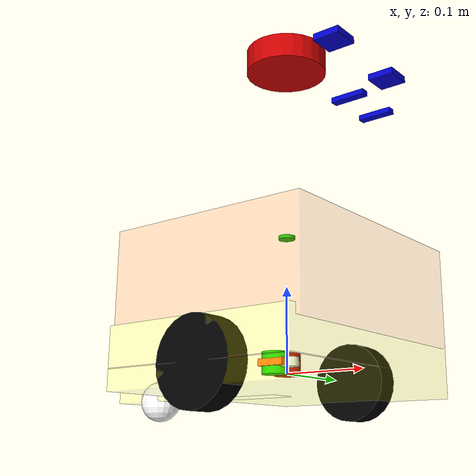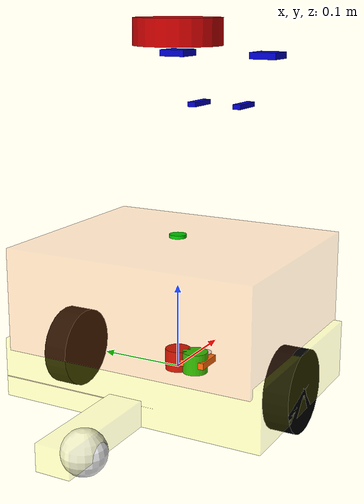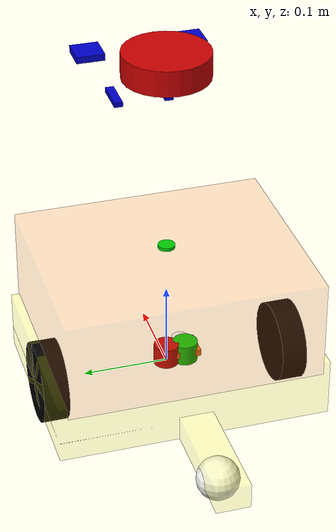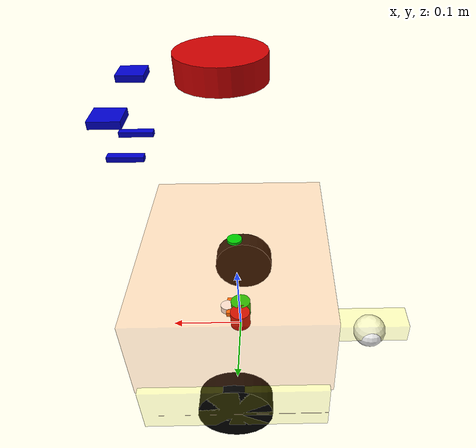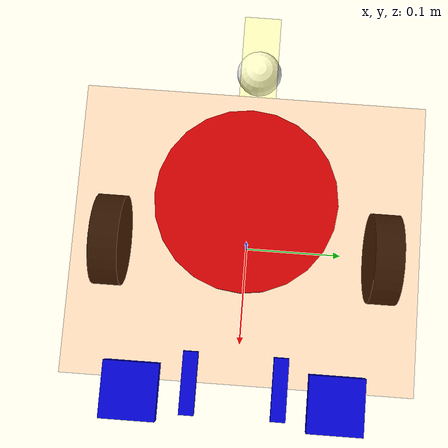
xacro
<?xml version="1.0"?>
<!-- vqwbot differential drive mobile base -->
<robot xmlns:xacro="http://www.ros.org/wiki/xacro" name="vqwbot">

  <!-- Import Rviz colors -->
  <xacro:include filename="$(find vqwbot_bringup)/urdf/vqwbot.materials.xacro" />

  <!-- Import inertia macros -->
  <xacro:include filename="$(find vqwbot_bringup)/urdf/vqwbot.inertia.xacro" />

<!-- import vqwbot_base macro -->
  <xacro:include filename="$(find vqwbot_bringup)/urdf/vqwbot_description.urdf.xacro" />

  <!-- Import roboclaw.ros2_control macro -->
  <xacro:include filename="$(find vqwbot_bringup)/urdf/roboclaw.ros2_control.xacro" />

  <!-- Import bno08x_ros2_control macro -->
  <xacro:include filename="$(find vqwbot_bringup)/urdf/bno08x.ros2_control.xacro" />

  <!-- Import camera_urdf macro -->
  <xacro:include filename="$(find vqwbot_bringup)/urdf/camera.urdf.xacro" />

  <!-- Import argus_camera_urdf macro -->
  <xacro:include filename="$(find vqwbot_bringup)/urdf/argus_camera.urdf.xacro" />

  <!-- Import servo_ros2_control macro -->
  <xacro:include filename="$(find vqwbot_bringup)/urdf/servo_ros2_control.xacro" />

  <!-- Import cam_pan_tilt_ros2_control macro -->
  <xacro:include filename="$(find vqwbot_bringup)/urdf/cam_pan_tilt_ros2_control.xacro" />

  <xacro:vqwbot_base />

  <xacro:camera_urdf prefix="L" y_multiplier="1" />
  <xacro:camera_urdf prefix="R" y_multiplier="-1" />

  <xacro:argus_camera_urdf prefix="L" y_multiplier="1" />
  <xacro:argus_camera_urdf prefix="R" y_multiplier="-1" />

  <xacro:roboclaw_ros2_control name="roboclaw_controller" />

  <xacro:bno08x_ros2_control name="bno08x_controller" />

  <xacro:cam_pan_tilt_ros2_control name="pan_tilt_controller" />

</robot>

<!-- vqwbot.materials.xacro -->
<!--
Copied from ROS1 example:
https://github.com/ros-simulation/gazebo_ros_demos/blob/kinetic-devel/rrbot_description/urdf/materials.xacro
-->
<robot>

  <material name="black">
    <color rgba="0.0 0.0 0.0 1.0"/>
  </material>

  <material name="blue">
    <color rgba="0.0 0.0 0.8 1.0"/>
  </material>

  <material name="green">
    <color rgba="0.0 0.8 0.0 1.0"/>
  </material>

  <material name="yellow">
    <color rgba="1.0 1.0 0.0 1.0"/>
  </material>

  <material name="yellow_transparent">
    <color rgba="1.0 1.0 0.0 0.2"/>
  </material>

  <material name="grey">
    <color rgba="0.2 0.2 0.2 1.0"/>
  </material>

  <material name="orange">
    <color rgba="${255/255} ${108/255} ${10/255} 1.0"/>
  </material>

  <material name="orange_transparent">
    <color rgba="${255/255} ${108/255} ${10/255} 0.2"/>
  </material>

  <material name="brown">
    <color rgba="${222/255} ${207/255} ${195/255} 1.0"/>
  </material>

  <material name="red">
    <color rgba="0.8 0.0 0.0 1.0"/>
  </material>

  <material name="white">
    <color rgba="1.0 1.0 1.0 1.0"/>
  </material>

</robot>

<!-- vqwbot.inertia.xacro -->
<robot xmlns:xacro="http://www.ros.org/wiki/xacro">
  <xacro:macro name="box_inertia" params="m w h d">
    <inertial>
      <origin xyz="0 0 0" rpy="${pi/2} 0 ${pi/2}"/>
      <mass value="${m}"/>
      <inertia ixx="${(m/12) * (h*h + d*d)}" ixy="0.0" ixz="0.0" iyy="${(m/12) * (w*w + d*d)}" iyz="0.0" izz="${(m/12) * (w*w + h*h)}"/>
    </inertial>
  </xacro:macro>

  <xacro:macro name="cylinder_inertia" params="m r h">
    <inertial>
      <origin xyz="0 0 0" rpy="${pi/2} 0 0" />
      <mass value="${m}"/>
      <inertia ixx="${(m/12) * (3*r*r + h*h)}" ixy = "0" ixz = "0" iyy="${(m/12) * (3*r*r + h*h)}" iyz = "0" izz="${(m/2) * (r*r)}"/>
    </inertial>
  </xacro:macro>

  <xacro:macro name="sphere_inertia" params="m r">
    <inertial>
      <mass value="${m}"/>
      <inertia ixx="${(2/5) * m * (r*r)}" ixy="0.0" ixz="0.0" iyy="${(2/5) * m * (r*r)}" iyz="0.0" izz="${(2/5) * m * (r*r)}"/>
    </inertial>
  </xacro:macro>

</robot>

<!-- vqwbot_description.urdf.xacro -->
<robot xmlns:xacro="http://www.ros.org/wiki/xacro">

  <xacro:macro name="vqwbot_base">
    <!-- Constants for robot dimensions -->
    <xacro:property name="PI" value="3.1415926535897931"/>
    <xacro:property name="base_mass" value="0.003" />
    <!-- TODO: Fixme -->

    <xacro:property name="base_width" value="0.32" />
    <xacro:property name="base_length" value="0.24" />
    <xacro:property name="base_height" value="0.07" />

    <xacro:property name="base2_width" value="0.30" />
    <xacro:property name="base2_length" value="0.25" />
    <xacro:property name="base2_height" value="0.12" />

    <xacro:property name="tail_width" value="0.04" />
    <xacro:property name="tail_length" value="0.25" />
    <xacro:property name="tail_height" value="0.03" />
    <xacro:property name="tail_offset" value="-0.13" />

    <xacro:property name="wheel_mass" value="0.001" />
    <xacro:property name="wheel_len" value="0.03" />
    <xacro:property name="wheel_radius" value="0.048" />

    <xacro:property name="caster_wheel_mass" value="0.0005" />  <!-- TODO: Fixme -->
    <xacro:property name="caster_wheel_radius" value="0.025" />
    <xacro:property name="caster_wheel_x_offset" value="-0.200" />

    <xacro:property name="lidar_height" value="0.39" />
    <xacro:property name="imu_height" value="0.16" />

    <xacro:property name="wheel_from_centerline" value="${-base_width/2 - wheel_len/2}" />

    <link name="base_link"> <!-- this is the main body's box -->
      <collision>
        <origin xyz="0 0 ${(base_height/2)-(wheel_radius/2)}" rpy="0 0 0"/>
        <geometry>
          <box size="${base_length} ${base_width} ${base_height}"/>
        </geometry>
      </collision>
      <visual>
        <origin xyz="0 0 ${(base_height/2)-(wheel_radius/2)}" rpy="0 0 0"/>
        <geometry>
          <box size="${base_length} ${base_width} ${base_height}"/>
        </geometry>
        <material name="yellow_transparent"/>
      </visual>
    </link>

    <link name="base_footprint">
      <collision>
        <origin xyz="0 0 0" rpy="0 0 0"/>
        <geometry>
          <box size="${base_length} ${base_width} 0.001"/>
        </geometry>
      </collision>
      <visual>
        <origin xyz="0 0 0" rpy="0 0 0"/>
        <geometry>
          <box size="${base_length} ${base_width} 0.001"/>
        </geometry>
        <material name="orange_transparent"/>
      </visual>
    </link>
    <joint name="base_footprint_joint" type="fixed">
      <parent link="base_link"/>
      <child link="base_footprint"/>
      <origin xyz="0 0 0" rpy="0 0 0"/>
    </joint>
    <joint name="tail_joint" type="fixed">
      <parent link="base_link"/>
      <child link="tail_link"/>
      <origin xyz="0 0 0" rpy="0 0 0"/>
    </joint>

    <link name="tail_link"> <!-- this is Tail that sticks out of the back -->
      <collision>
        <origin xyz="${tail_offset} 0 ${(tail_height/2)-(wheel_radius/2)}" rpy="0 0 0"/>
        <geometry>
          <box size="${tail_length} ${tail_width} ${tail_height}"/>
        </geometry>
      </collision>
      <visual>
        <origin xyz="${tail_offset} 0 ${(tail_height/2)-(wheel_radius/2)}" rpy="0 0 0"/>
        <geometry>
          <box size="${tail_length} ${tail_width} ${tail_height}"/>
        </geometry>
        <material name="yellow_transparent"/>
      </visual>
      <xacro:box_inertia m="${base_mass}" w="${tail_width}" h="${tail_height}" d="${tail_length}" />
    </link>

    <joint name="upper_base_joint" type="fixed">
      <parent link="base_link"/>
      <child link="upper_base_link"/>
      <origin xyz="0 0 0" rpy="0 0 0"/>
    </joint>

    <link name="upper_base_link">
      <collision>
        <origin xyz="0 0 ${(base_height/2)+(base2_height/2)}" rpy="0 0 0"/>
        <geometry>
          <box size="${base2_length} ${base2_width} ${base2_height}"/>
        </geometry>
      </collision>
      <visual>
        <origin xyz="0 0 ${(base_height/2)+(base2_height/2)}" rpy="0 0 0"/>
        <geometry>
          <box size="${base2_length} ${base2_width} ${base2_height}"/>
        </geometry>
        <material name="orange_transparent" />
      </visual>
    </link>

    <joint name="left_wheel_joint" type="continuous">
      <parent link="base_link"/>
      <child link="left_wheel"/>
      <origin xyz="0 ${base_width/2 - wheel_len/2} 0" rpy="0 0 0"/>
      <axis xyz="0 1 0"/>
      <dynamics damping="0.2"/>
    </joint>

    <link name="left_wheel">
      <collision>
        <origin xyz="0 0 0" rpy="${PI/2} 0 0"/>
        <geometry>
          <cylinder length="${wheel_len}" radius="${wheel_radius}"/>
        </geometry>
      </collision>
      <visual>
        <origin xyz="0 0 0" rpy="${PI/2} 0 0"/>
        <geometry>
          <cylinder length="${wheel_len}" radius="${wheel_radius}"/>
        </geometry>
        <material name="black"/>
      </visual>
      <xacro:cylinder_inertia m="${wheel_mass}" r="${wheel_radius}" h="${wheel_len}" />
    </link>

    <joint name="right_wheel_joint" type="continuous">
      <parent link="base_link"/>
      <child link="right_wheel"/>
      <origin xyz="0 ${-base_width/2 + wheel_len/2} 0" rpy="0 0 0"/>
      <axis xyz="0 1 0"/>
      <dynamics damping="0.2"/>
    </joint>

    <link name="right_wheel">
      <collision>
        <origin xyz="0 0 0" rpy="${PI/2} 0 0"/>
        <geometry>
          <cylinder length="${wheel_len}" radius="${wheel_radius}"/>
        </geometry>
      </collision>
      <visual>
        <origin xyz="0 0 0" rpy="${PI/2} 0 0"/>
        <geometry>
          <cylinder length="${wheel_len}" radius="${wheel_radius}"/>
        </geometry>
        <material name="black"/>
      </visual>
      <xacro:cylinder_inertia m="${wheel_mass}" r="${wheel_radius}" h="${wheel_len}" />
    </link>

    <joint name="caster_rear_wheel_joint" type="fixed">
      <parent link="base_link"/>
      <child link="caster_rear_wheel"/>
      <origin xyz="${caster_wheel_x_offset} 0 ${caster_wheel_radius - wheel_radius}" rpy="0 0 0"/>
    </joint>

    <link name="caster_rear_wheel">
      <collision>
        <origin xyz="0 0 0" rpy="0 0 0"/>
        <geometry>
          <sphere radius="${caster_wheel_radius}"/>
        </geometry>
      </collision>
      <visual>
        <origin xyz="0 0 0" rpy="0 0 0"/>
        <geometry>
          <sphere radius="${caster_wheel_radius}"/>
        </geometry>
        <material name="white"/>
      </visual>
      <xacro:sphere_inertia m="${caster_wheel_mass}" r="${caster_wheel_radius}" />
    </link>

    <joint name="laser_joint" type="fixed">
      <parent link="base_link"/>
      <child link="laser_scan"/>
      <origin xyz="0 0 ${lidar_height}" rpy="0 0 3.1415926"/>
    </joint>

    <link name="laser_scan">
      <collision>
        <origin xyz="0 0 0" rpy="0 0 0"/>
        <geometry>
          <cylinder length="0.04" radius="0.05"/>
        </geometry>
      </collision>
      <visual>
        <origin xyz="0 0 0" rpy="0 0 0"/>
        <geometry>
          <cylinder length="0.03" radius="0.05"/>
        </geometry>
        <material name="red"/>
      </visual>
    </link>

    <joint name="imu_joint" type="fixed">
      <parent link="base_link"/>
      <child link="imu_link"/>
      <origin xyz="0 0 ${imu_height}" rpy="0 0 0"/>
      </joint>

      <link name="imu_link">
      <collision>
        <origin xyz="0 0 0" rpy="0 0 0"/>
        <geometry>
          <cylinder length="0.004" radius="0.01"/>
        </geometry>
      </collision>
      <visual>
        <origin xyz="0 0 0" rpy="0 0 0"/>
        <geometry>
          <cylinder length="0.004" radius="0.01"/>
        </geometry>
        <material name="green"/>
      </visual>
      <xacro:cylinder_inertia m="0.0001" r="0.005" h="0.004" />
    </link>

 <gazebo reference="imu_link">
  <sensor name="imu_sensor" type="imu">
   <plugin filename="libgazebo_ros_imu_sensor.so" name="imu_plugin">
      <ros>
        <namespace>/sim</namespace>
        <remapping>~/out:=imu</remapping>
      </ros>
      <initial_orientation_as_reference>false</initial_orientation_as_reference>
    </plugin>
    <always_on>true</always_on>
    <update_rate>100</update_rate>
    <visualize>true</visualize>
    <imu>
      <angular_velocity>
        <x>
          <noise type="gaussian">
            <mean>0.0</mean>
            <stddev>2e-4</stddev>
            <bias_mean>0.0000075</bias_mean>
            <bias_stddev>0.0000008</bias_stddev>
          </noise>
        </x>
        <y>
          <noise type="gaussian">
            <mean>0.0</mean>
            <stddev>2e-4</stddev>
            <bias_mean>0.0000075</bias_mean>
            <bias_stddev>0.0000008</bias_stddev>
          </noise>
        </y>
        <z>
          <noise type="gaussian">
            <mean>0.0</mean>
            <stddev>2e-4</stddev>
            <bias_mean>0.0000075</bias_mean>
            <bias_stddev>0.0000008</bias_stddev>
          </noise>
        </z>
      </angular_velocity>
      <linear_acceleration>
        <x>
          <noise type="gaussian">
            <mean>0.0</mean>
            <stddev>1.7e-2</stddev>
            <bias_mean>0.1</bias_mean>
            <bias_stddev>0.001</bias_stddev>
          </noise>
        </x>
        <y>
          <noise type="gaussian">
            <mean>0.0</mean>
            <stddev>1.7e-2</stddev>
            <bias_mean>0.1</bias_mean>
            <bias_stddev>0.001</bias_stddev>
          </noise>
        </y>
        <z>
          <noise type="gaussian">
            <mean>0.0</mean>
            <stddev>1.7e-2</stddev>
            <bias_mean>0.1</bias_mean>
            <bias_stddev>0.001</bias_stddev>
          </noise>
        </z>
      </linear_acceleration>
    </imu>
  </sensor>
</gazebo>

<gazebo>
  <plugin name='diff_drive' filename='libgazebo_ros_diff_drive.so'>
    <ros>
      <namespace>/sim</namespace>
    </ros>

    <!-- wheels -->
    <left_joint>left_wheel_joint</left_joint>
    <right_joint>right_wheel_joint</right_joint>

    <!-- kinematics -->
    <wheel_separation>${wheel_from_centerline * 2}</wheel_separation>
    <wheel_diameter>${wheel_radius * 2}</wheel_diameter>

    <!-- limits -->
    <max_wheel_torque>20</max_wheel_torque>
    <max_wheel_acceleration>1.0</max_wheel_acceleration>

    <!-- output -->
    <publish_odom>true</publish_odom>
    <publish_odom_tf>false</publish_odom_tf>
    <publish_wheel_tf>true</publish_wheel_tf>

    <odometry_frame>odom</odometry_frame>
    <robot_base_frame>base_link</robot_base_frame>
  </plugin>
</gazebo>

  </xacro:macro>
</robot>

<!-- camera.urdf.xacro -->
<robot xmlns:xacro="http://www.ros.org/wiki/xacro">

  <xacro:macro name="camera_urdf" params="prefix y_multiplier">

    <xacro:property name="camera_height" value="0.016" />
    <xacro:property name="camera_width" value="0.033" />
    <xacro:property name="camera_length" value="0.033" />
    <xacro:property name="camera_x_offset" value="0.110" />
    <xacro:property name="camera_y_offset" value="0.060" />
    <xacro:property name="camera_z_offset" value="0.360" />
    <xacro:property name="pi_2" value="1.570796" />
    <xacro:property name="camera_mass" value="0.0001" />
    <xacro:property name="servo_length" value="0.025" />
    <xacro:property name="servo_radius" value="0.015" />
    <xacro:property name="revolute" value="revolute" />

    <joint name="camera_${prefix}_base_joint" type="fixed">
      <parent link="base_link"/>
      <child link="camera_${prefix}_base_link"/>
      <origin xyz="0 0 0" rpy="0 0 0"/>
    </joint>

    <link name="camera_${prefix}_base_link">
      <collision>
        <origin xyz="${camera_x_offset} ${camera_y_offset * y_multiplier} ${camera_z_offset}" rpy="0 0 ${pi_2 * y_multiplier}"/>
        <geometry>
          <box size="${camera_length} ${camera_width} ${camera_height}"/>
        </geometry>
      </collision>
      <visual>
        <origin xyz="${camera_x_offset} ${camera_y_offset * y_multiplier} ${camera_z_offset}" rpy="0 0 ${pi_2 * y_multiplier}"/>
        <geometry>
          <box size="${camera_length} ${camera_width} ${camera_height/2}"/>
        </geometry>
        <material name="blue"/>
      </visual>
      <xacro:box_inertia m="${camera_mass}" w="${camera_width}" h="${camera_height}" d="${camera_length}" />
    </link>

    <joint name="camera_${prefix}_pan_joint" type="${revolute}">
      <parent link="camera_${prefix}_base_link"/>
      <child link="camera_${prefix}_pan_link"/>
      <origin xyz="0 0 0" rpy="0 0 0"/>
      <axis xyz="0 0 1"/>
      <dynamics damping="0.01"/>
      <limit lower="-${pi_2}" upper="${pi_2}" effort="1000.0" velocity="10"  />
    </joint>
    <link name="camera_${prefix}_pan_link">
      <collision>
        <origin xyz="0 0 0.01" rpy="0 0 0"/>
        <geometry>
          <cylinder length="${servo_length}" radius="${servo_radius}"/>
        </geometry>
      </collision>
      <visual>
        <origin xyz="0 0 0.01" rpy="0 0 0"/>
        <geometry>
          <cylinder length="${servo_length}" radius="${servo_radius}"/>
        </geometry>
        <material name="red"/>
      </visual>
      <xacro:cylinder_inertia m="0.0001" r="${servo_radius}" h="${servo_length}" />
    </link>

    <joint name="camera_${prefix}_tilt_joint" type="${revolute}">
      <parent link="camera_${prefix}_pan_link"/>
      <child link="camera_${prefix}_tilt_link"/>
      <origin xyz="0 -0.023 0" rpy="0 0 0"/>
      <axis xyz="0 1 0"/>
      <dynamics damping="0.01"/>
      <limit lower="-${pi_2}" upper="${pi_2}" effort="1000.0" velocity="10"  />
    </joint>
    <link name="camera_${prefix}_tilt_link">
      <collision>
        <origin xyz="0 0 0.01" rpy="0 0 0"/>
        <geometry>
          <cylinder length="${servo_length}" radius="${servo_radius}"/>
        </geometry>
      </collision>
      <visual>
        <origin xyz="0 0 0.01" rpy="0 0 0"/>
        <geometry>
          <cylinder length="${servo_length}" radius="${servo_radius}"/>
        </geometry>
        <material name="green"/>
      </visual>
      <xacro:cylinder_inertia m="0.0001" r="${servo_radius}" h="${servo_length}" />
    </link>

    <joint name="camera_${prefix}_cam_joint" type="fixed">
      <parent link="camera_${prefix}_tilt_link"/>
      <child link="camera_${prefix}_cam_link"/>
      <origin xyz="0.005 0 0" rpy="0 0 0"/>
    </joint>
    <link name="camera_${prefix}_cam_link">
      <collision>
        <origin xyz="0 0 0.01" rpy="0 ${pi_2} 0"/>
        <geometry>
          <box size="${camera_length} ${camera_width} ${camera_height}"/>
        </geometry>
      </collision>
      <visual>
        <origin xyz="0 0 0.01" rpy="0 0 0"/>
        <geometry>
          <box size="${camera_length} ${camera_width} ${camera_height/2}"/>
        </geometry>
        <material name="orange"/>
      </visual>
      <xacro:box_inertia m="${camera_mass}" w="${camera_width}" h="${camera_height}" d="${camera_length}" />
    </link>

    <joint name="camera_${prefix}_camlense_joint" type="fixed">
      <parent link="camera_${prefix}_cam_link"/>
      <child link="camera_${prefix}_camlense_link"/>
      <origin xyz="0.016 0.0 0.0" rpy="0 0 0"/>
    </joint>
    <link name="camera_${prefix}_camlense_link">
      <collision>
        <origin xyz="0 0 0" rpy="0 0 0"/>
        <geometry>
          <cylinder length="0.01" radius="0.01"/>
        </geometry>
      </collision>
      <visual>
        <origin xyz="0 0 0.01" rpy="0 0 0"/>
        <geometry>
          <cylinder length="0.01" radius="0.01"/>
        </geometry>
        <material name="white"/>
      </visual>
      <xacro:box_inertia m="0.00001" w="0.0001" h="0.0001" d="0.0001" />
    </link>

  </xacro:macro>

</robot>

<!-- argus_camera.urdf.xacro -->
<robot xmlns:xacro="http://www.ros.org/wiki/xacro">

  <xacro:macro name="argus_camera_urdf" params="prefix y_multiplier">

    <xacro:property name="camera_height" value="0.012" />
    <xacro:property name="camera_width" value="0.041" />
    <xacro:property name="camera_length" value="0.01" />
    <xacro:property name="camera_x_offset" value="0.110" />
    <xacro:property name="camera_y_offset" value="0.03" />
    <xacro:property name="camera_z_offset" value="0.3" />
    <xacro:property name="pi_2" value="1.570796" />
    <xacro:property name="camera_mass" value="0.0001" />

    <joint name="argus_camera_${prefix}_base_joint" type="fixed">
      <parent link="base_link"/>
      <child link="argus_camera_${prefix}_base_link"/>
      <origin xyz="0 0 0" rpy="0 0 0"/>
    </joint>

    <link name="argus_camera_${prefix}_base_link">
      <collision>
        <origin xyz="${camera_x_offset} ${camera_y_offset * y_multiplier} ${camera_z_offset}" rpy="0 0 ${pi_2 * y_multiplier}"/>
        <geometry>
          <box size="${camera_length} ${camera_width} ${camera_height}"/>
        </geometry>
      </collision>
      <visual>
        <origin xyz="${camera_x_offset} ${camera_y_offset * y_multiplier} ${camera_z_offset}" rpy="0 0 ${pi_2 * y_multiplier}"/>
        <geometry>
          <box size="${camera_length} ${camera_width} ${camera_height/2}"/>
        </geometry>
        <material name="blue"/>
      </visual>
      <xacro:box_inertia m="${camera_mass}" w="${camera_width}" h="${camera_height}" d="${camera_length}" />
    </link>

    <joint name="argus_camera_${prefix}_optical_joint" type="fixed">
      <parent link="argus_camera_${prefix}_base_link"/>
      <child link="argus_camera_${prefix}_optical_link"/>
      <origin xyz="0 0 0" rpy="0 0 0"/>
    </joint>

    <link name="argus_camera_${prefix}_optical_link">
      <collision>
        <origin xyz="0 0 0"/>
        <geometry>
          <box size="0.005 0.005 0.005"/>
        </geometry>
      </collision>
      <visual>
        <origin xyz="0 0 0"/>
        <geometry>
          <box size="0.005 0.005 0.005"/>
        </geometry>
        <material name="red"/>
      </visual>
      <xacro:box_inertia m="${camera_mass}" w="0.005" h="0.005" d="0.005" />
    </link>

  </xacro:macro>

</robot>
